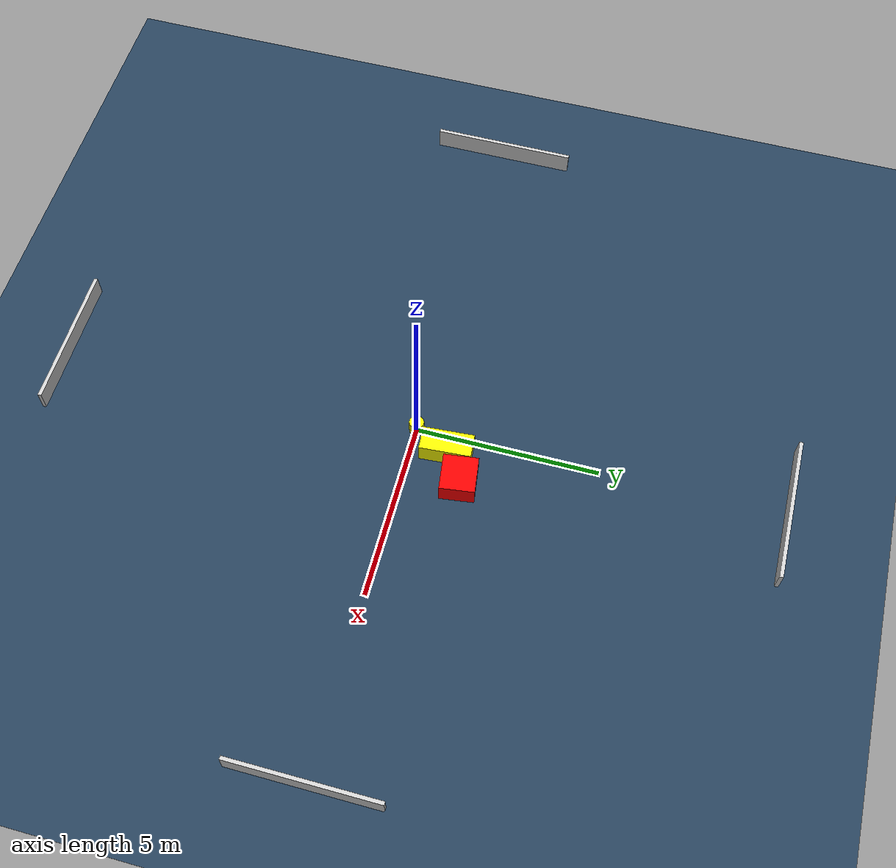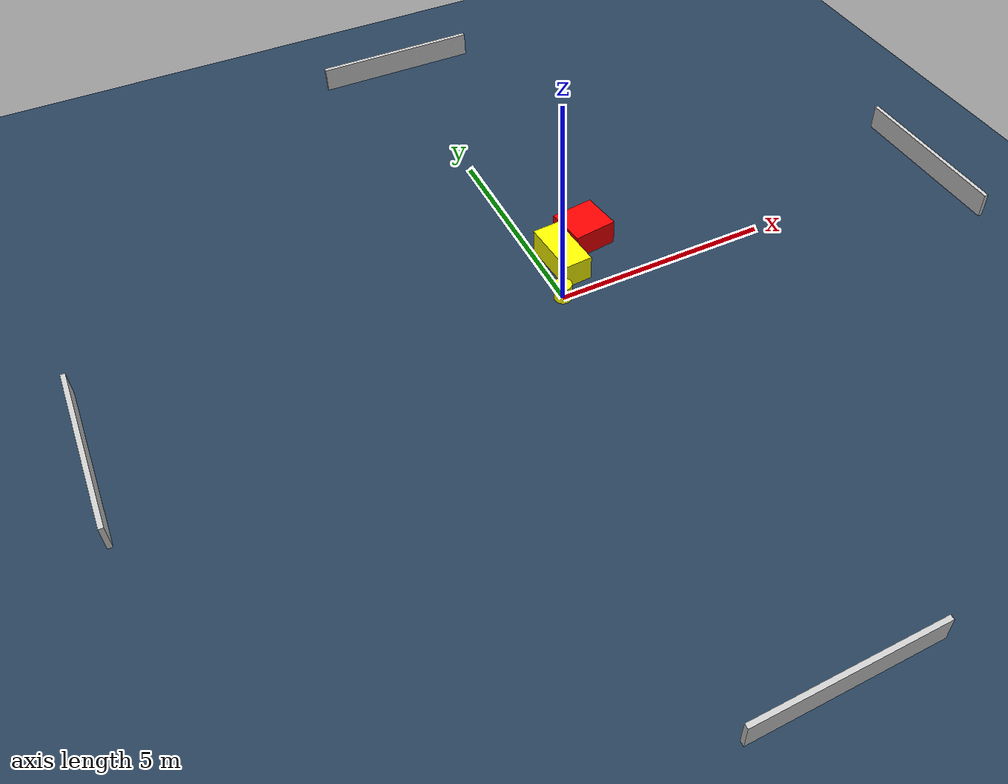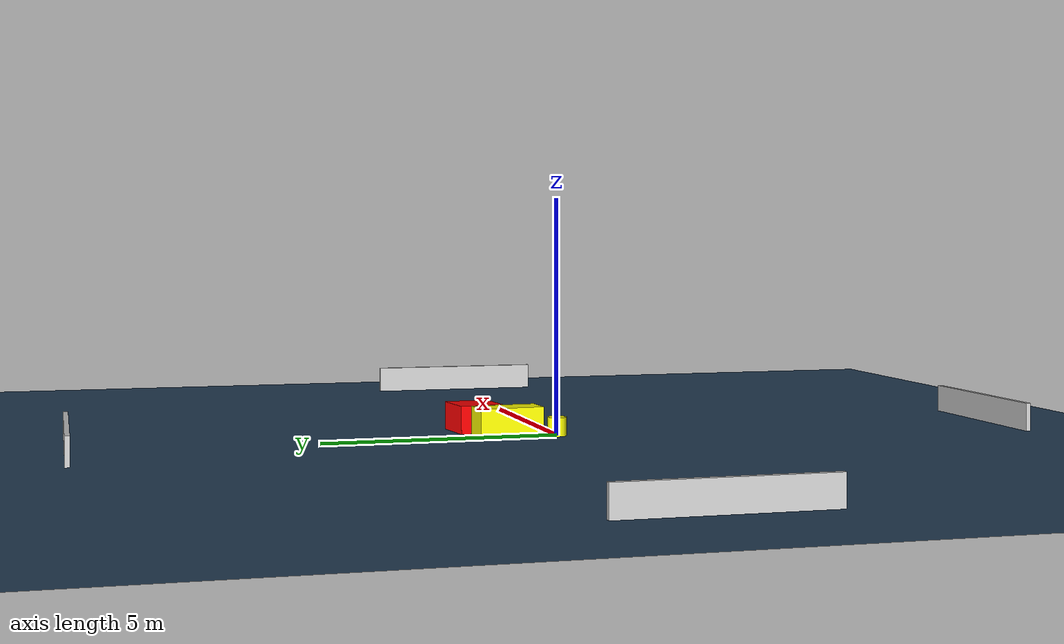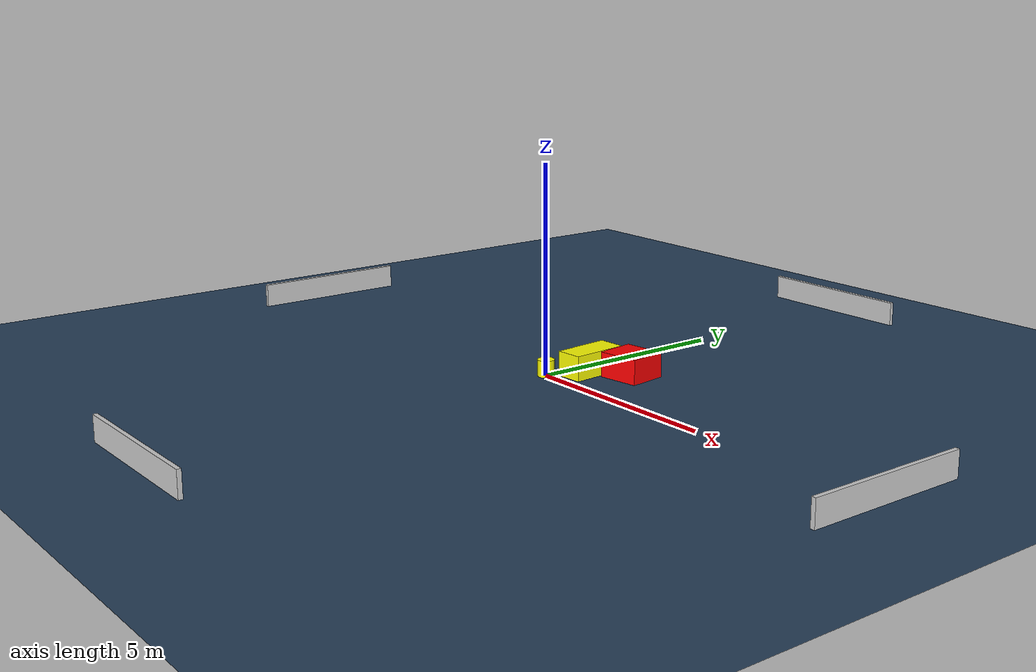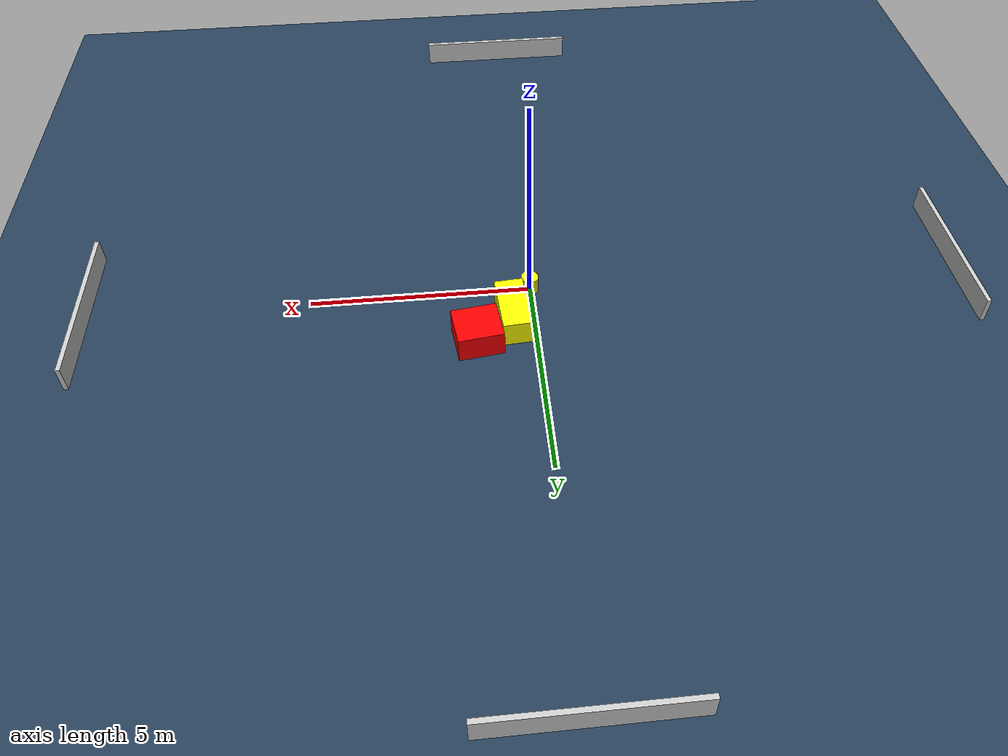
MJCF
<?xml version="1.0" ?>
<mujoco model="generated_environment">
  <option timestep="0.01" integrator="RK4" cone="elliptic"/>
  <default>
    <geom density="1"/>
  </default>
  <asset>
    <texture builtin="gradient" height="3072" name="skybox" rgb1="0.3 0.5 0.7" rgb2="0 0 0" type="skybox" width="512"/>
    <texture builtin="checker" height="300" name="groundplane" rgb1="0.2 0.3 0.4" rgb2="0.1 0.2 0.3" type="2d" width="300"/>
    <material name="groundplane" reflectance="0.2" texrepeat="5 5" texture="groundplane"/>
  </asset>
  <worldbody>
    <light dir="0 0 -1" directional="true" pos="0 0 1.5"/>
    <geom condim="3" friction="0.5 0.005 0.001" material="groundplane" name="floor" pos="0 0 0" size="0 0 0.05" type="plane"/>
    <body name="walls">
      <geom name="wall_1" condim="4" pos="-10.0 0.0 0.3" rgba="0.800000011920929 0.800000011920929 0.800000011920929 1.0" size="0.05 2.0 0.3" type="box"/>
      <geom name="wall_2" condim="4" pos="10.0 0.0 0.3" rgba="0.800000011920929 0.800000011920929 0.800000011920929 1.0" size="0.05 2.0 0.3" type="box"/>
      <geom name="wall_3" condim="4" pos="0.0 -10.0 0.3" rgba="0.800000011920929 0.800000011920929 0.800000011920929 1.0" size="2.0 0.05 0.3" type="box"/>
      <geom name="wall_4" condim="4" pos="0.0 10.0 0.3" rgba="0.800000011920929 0.800000011920929 0.800000011920929 1.0" size="2.0 0.05 0.3" type="box"/>
    </body>
    <body name="robot">
      <joint name="joint_x" type="slide" pos="0 0 0" axis="1 0 0"/>
      <joint name="joint_y" type="slide" pos="0 0 0" axis="0 1 0"/>
      <geom name="robot" type="cylinder" pos="0.0 0.0 0.2" size="0.2 0.2 0.0" mass="5.0" friction="1.0 0.005 0.0001" condim="4" rgba="1.0 1.0 0.0 1.0"/>
    </body>
    <body name="obstacle_1_movable">
      <geom name="obstacle_1_movable" condim="4" pos="0.46561512077297534 0.9558884354858862 0.3" euler="0 0 274.10341860706905" friction="0.0 0.005 0.001" rgba="1.0 1.0 0.0 1.0" size="0.6993206425019216 0.3254415581752437 0.3" type="box" mass="0.1"/>
      <joint type="free"/>
    </body>
    <body name="obstacle_2_static">
      <geom name="obstacle_2_static" condim="4" pos="1.292366557742242 1.5007624894871476 0.3" euler="0 0 187.6283319415939" friction="0.0 0.005 0.001" rgba="1.0 0.0 0.0 1.0" size="0.5078043227081719 0.47313311429246235 0.3" type="box"/>
    </body>
  </worldbody>
  <actuator>
    <motor name="actuator_x" joint="joint_x" gear="1" ctrlrange="-1 1"/>
    <motor name="actuator_y" joint="joint_y" gear="1" ctrlrange="-1 1"/>
  </actuator>
</mujoco>
